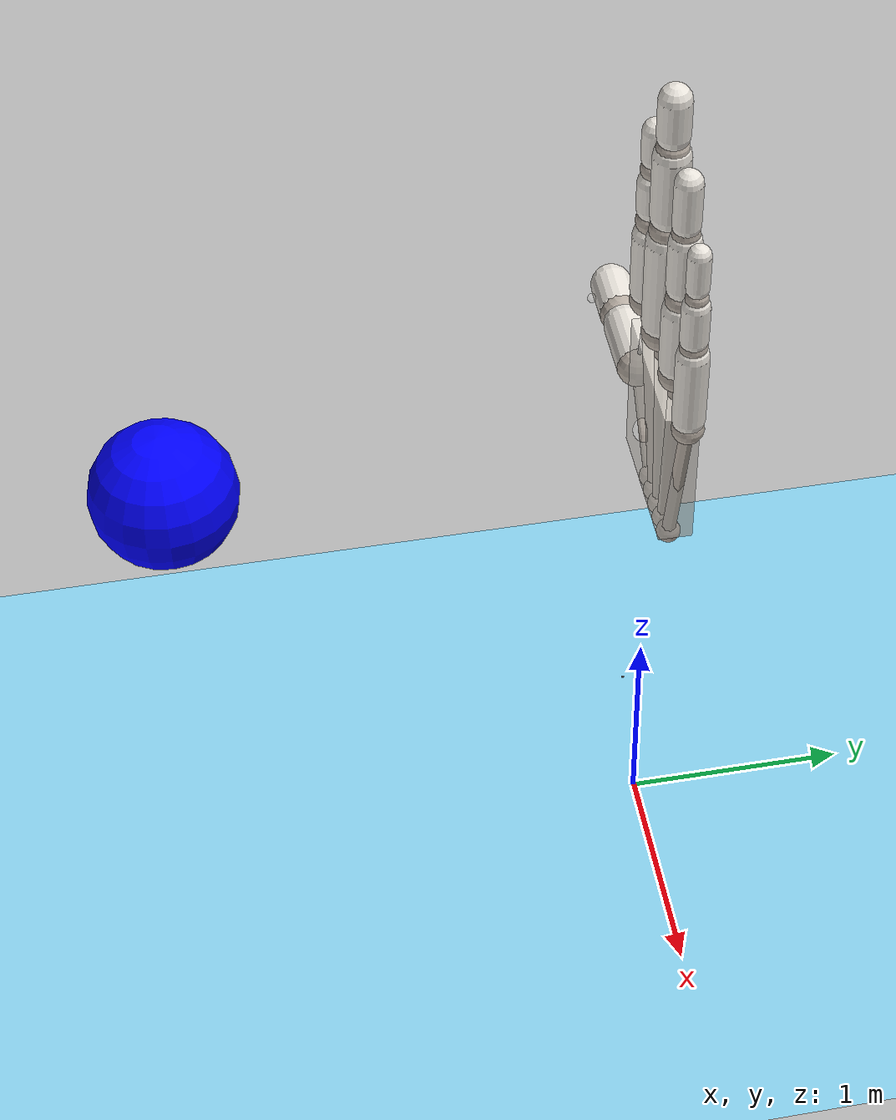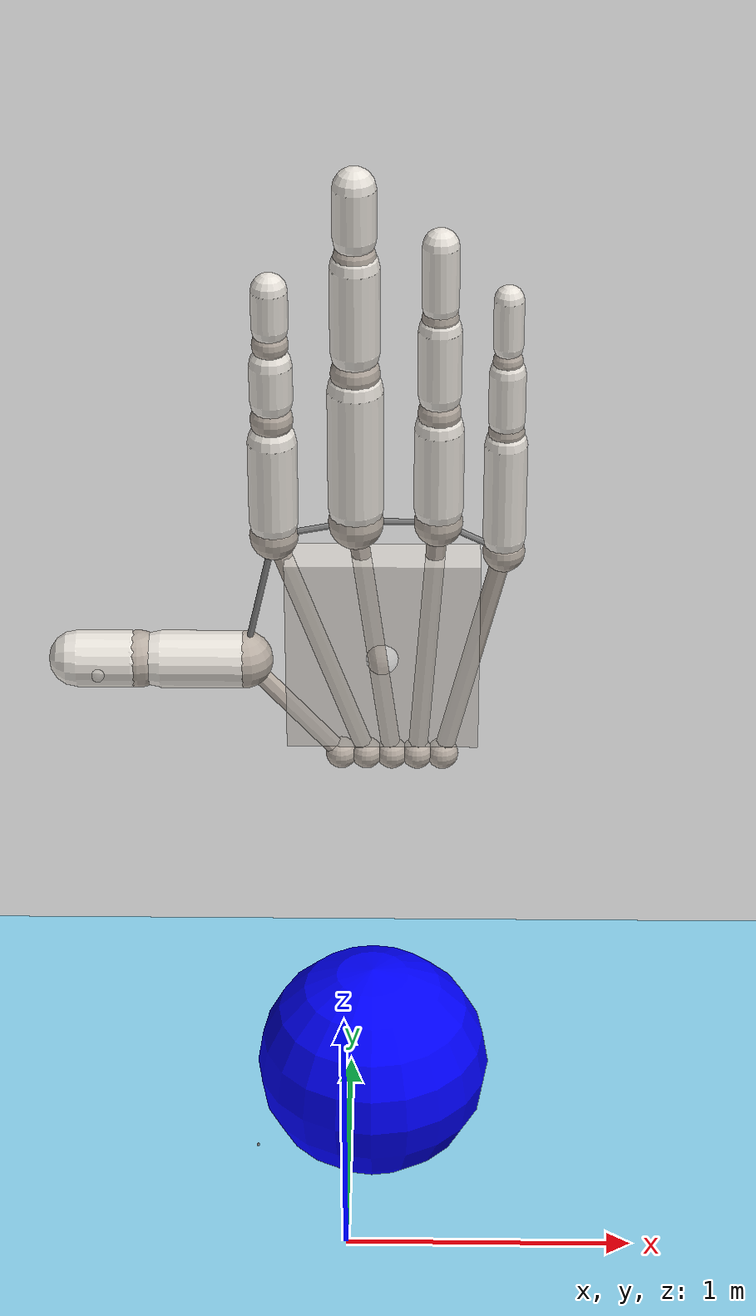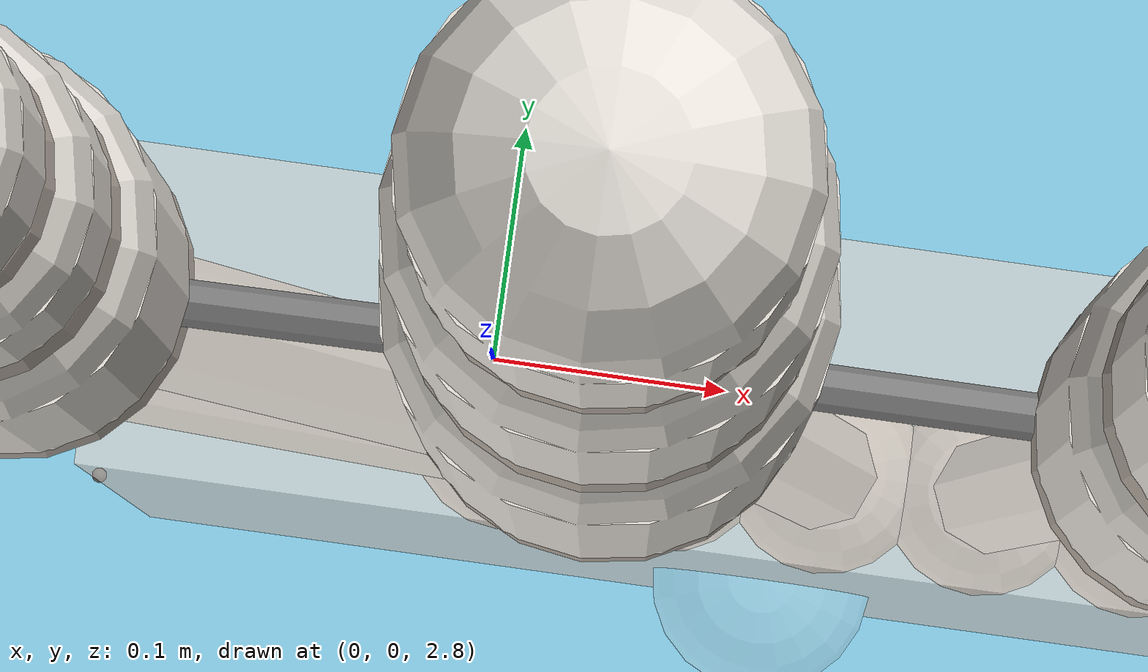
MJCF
<mujoco>
  <compiler angle="degree"/>
  <option  gravity="0 0 0" timestep="0.001"/>

  <worldbody>
    <light pos="0 0 100"/>
    <geom type="plane" size="50 50 0.1" pos="0 0 0" rgba="0.53 0.81 0.92 1"/>

    <body name="base" pos="0 0 2">

      <site name="jointf01_site" pos="0 0 0.1"/>
      <site name="jointf02_site" pos="0.08 0 0.1"/>
      <site name="jointf03_site" pos="0.16 0 0.1"/>
      <site name="jointf04_site" pos="0.24 0 0.1"/>
      <site name="jointf05_site" pos="0.32 0 0.1"/>

      <geom name="jointf01" type="sphere" size="0.05" pos="0 0 0.1" rgba="0.72 0.68 0.64 1"/>
      <geom name="jointf02" type="sphere" size="0.05" pos="0.08 0 0.1" rgba="0.72 0.68 0.64 1"/>
      <geom name="jointf03" type="sphere" size="0.05" pos="0.16 0 0.1" rgba="0.72 0.68 0.64 1"/>
      <geom name="jointf04" type="sphere" size="0.05" pos="0.24 0 0.1" rgba="0.72 0.68 0.64 1"/>
      <geom name="jointf05" type="sphere" size="0.05" pos="0.32 0 0.1" rgba="0.72 0.68 0.64 1"/>

      <geom name="jointf07" type="box" size="0.3 0.07 0.33" pos="0.13 0 0.5" rgba="0.91 0.89 0.86 0.7" solref="0.02 2"/>
            <site name="hand_touch" size="0.05" rgba="0.91 0.89 0.86 0.2" pos=" 0.13 -0.07 0.5"/>

      <body name="finger1_part1">
        <joint name="jointf11" type="hinge" axis="1 0 0" pos="-0.2 0 0.9" range="0 90" damping="0.5"/>
        <site name="jointf11_site" pos="-0.2 0 0.9"/>
        <geom name="jointf11_type" type="sphere" size="0.075" pos="-0.2 0 0.9" rgba="0.72 0.68 0.64 1"/>
        <geom name="bonef11" type="capsule" size="0.075" fromto="-0.2 0 0.95 -0.2 0 1.225" rgba="0.91 0.89 0.86 1"/>

        <body name="finger1_part2">
          <joint name="jointf12" type="hinge" axis="1 0 0" pos="-0.2 0 1.3" range="0 90" damping="0.3"/>
          <site name="jointf12_site" pos="-0.2 0 1.3"/>
          <geom name="jointf12_type" type="sphere" size="0.065" pos="-0.2 0 1.3" rgba="0.72 0.68 0.64 1"/>
          <geom name="bonef12" type="capsule" size="0.065" fromto="-0.2 0 1.365 -0.2 0 1.4825" rgba="0.91 0.89 0.86 1"/>

          <body name="finger1_part3">
            <joint name="jointf13" type="hinge" axis="1 0 0" pos="-0.2 0 1.55" range="0 90" damping="0.2"/>
            <site name="jointf13_site" pos="-0.2 0 1.55"/>
            <geom name="jointf13_type" type="sphere" size="0.055" pos="-0.2 0 1.55" rgba="0.72 0.68 0.64 1"/>
            <geom name="bonef13" type="capsule" size="0.055" fromto="-0.2 0 1.605 -0.2 0 1.725" rgba="0.91 0.89 0.86 1"/>
          </body>
        </body>
      </body>

      <body name="finger2_part1">
        <joint name="jointf21" type="hinge" axis="1 0 0" pos="0.05 0 0.95" range="0 90"/>
        <site name="jointf21_site" pos="0.05 0 0.95"/>
        <geom name="jointf21_type" type="sphere" size="0.085" pos="0.05 0 0.95" rgba="0.72 0.68 0.64 1"/>
        <geom name="bonef21" type="capsule" size="0.085" fromto="0.05 0.0 1 0.05 0.0 1.4" rgba="0.91 0.89 0.86 1"/>

        <body name="finger2_part2">
          <joint name="jointf22" type="hinge" axis="1 0 0" pos="0.05 0.0 1.4549999999999998" range="0 90" />
          <site name="jointf22_site" pos="0.05 0.0 1.4549999999999998"/>
          <geom name="jointf22_type" type="sphere" size="0.075" pos="0.05 0.0 1.454999999999999" rgba="0.72 0.68 0.64 1"/>
          <geom name="bonef22" type="capsule" size="0.075" fromto="0.05 0.0 1.5299999999999998 0.05 0.0 1.8" rgba="0.91 0.89 0.86 1"/>

          <body name="finger2_part3">
            <joint name="jointf23" type="hinge" axis="1 0 0" pos="0.05 0.0 1.8299999999999998" range="0 90" />
            <site name="jointf23_site" pos="0.05 0.0 1.8299999999999998"/>
            <geom name="jointf23_type" type="sphere" size="0.065" pos="0.05 0.0 1.8299999999999998" rgba="0.72 0.68 0.64 1"/>
            <geom name="bonef23" type="capsule" size="0.065" fromto="0.05 0.0 1.8949999999999998 0.05 0.0 2.05" rgba="0.91 0.89 0.86 1"/>
          </body>
        </body>
      </body>

      <body name="finger3_part1">
        <joint name="jointf31" type="hinge" axis="1 0 0" pos="0.3 0 0.95" range="0 90"/>
        <site name="jointf31_site" pos="0.3 0 0.95"/>
        <geom name="jointf31_type" type="sphere" size="0.075" pos="0.3 0 0.95" rgba="0.72 0.68 0.64 1"/>
        <geom name="bonef31" type="capsule" size="0.075" fromto="0.3 0.0 1 0.3 0.0 1.27" rgba="0.91 0.89 0.86 1"/>

        <body name="finger3_part2">
          <joint name="jointf32" type="hinge" axis="1 0 0" pos="0.3 0.0 1.325" range="0 90" />
          <site name="jointf32_site" pos="0.3 0.0 1.325"/>
          <geom name="jointf32_type" type="sphere" size="0.065" pos="0.3 0.0 1.325" rgba="0.72 0.68 0.64 1"/>
          <geom name="bonef32" type="capsule" size="0.065" fromto="0.3 0.0 1.39 0.3 0.0 1.6" rgba="0.91 0.89 0.86 1"/>

          <body name="finger3_part3">
            <joint name="jointf33" type="hinge" axis="1 0 0" pos="0.3 0.0 1.64" range="0 90" />
            <site name="jointf33_site" pos="0.3 0.0 1.64"/>
            <geom name="jointf33_type" type="sphere" size="0.055" pos="0.3 0.0 1.64" rgba="0.72 0.68 0.64 1"/>
            <geom name="bonef33" type="capsule" size="0.055" fromto="0.3 0.0 1.68 0.3 0.0 1.87" rgba="0.91 0.89 0.86 1"/>
          </body>
        </body>
      </body>

      <body name="finger4_part1">
        <joint name="jointf41" type="hinge" axis="1 0 0" pos="0.5 0 0.85" range="0 90"/>
        <site name="jointf41_site" pos="0.5 0 0.85"/>
        <geom name="jointf41_type" type="sphere" size="0.065" pos="0.5 0 0.85" rgba="0.72 0.68 0.64 1"/>
        <geom name="bonef41" type="capsule" size="0.065" fromto="0.5 0.0 0.9 0.5 0.0 1.22" rgba="0.91 0.89 0.86 1"/>

        <body name="finger4_part2">
          <joint name="jointf42" type="hinge" axis="1 0 0" pos="0.5 0.0 1.265" range="0 90" />
          <site name="jointf42_site" pos="0.5 0.0 1.265"/>
          <geom name="jointf42_type" type="sphere" size="0.055" pos="0.5 0.0 1.265" rgba="0.72 0.68 0.64 1"/>
          <geom name="bonef42" type="capsule" size="0.055" fromto="0.5 0.0 1.3 0.5 0.0 1.46" rgba="0.91 0.89 0.86 1"/>

          <body name="finger4_part3">
            <joint name="jointf43" type="hinge" axis="1 0 0" pos="0.5 0.0 1.5199999999999998" range="0 90" />
            <site name="jointf43_site" pos="0.5 0.0 1.5199999999999998"/>
            <site name="jointf4_tip" pos="0.5 0.0 1.7" size="0.01" />
            <geom name="jointf43_type" type="sphere" size="0.045" pos="0.5 0.0 1.5" rgba="0.72 0.68 0.64 1"/>
            <geom name="bonef43" type="capsule" size="0.045" fromto="0.5 0.0 1.55 0.5 0.0 1.7" rgba="0.91 0.89 0.86 1"/>
          </body>
        </body>
      </body>

      <body name="finger5_part1">
        <joint name="jointf51" type="hinge" axis="0 0 1" pos="-0.3 0 0.45" range="0 90"/>
        <site name="jointf51_site" pos="-0.3 0 0.45"/>
        <geom name="jointf51_type" type="sphere" size="0.09" pos="-0.3 0 0.45" rgba="0.72 0.68 0.64 1"/>
        <geom name="bonef51" type="capsule" size="0.09" fromto="-0.305 0.0 0.45 -0.56 0.0 0.45" rgba="0.91 0.89 0.86 1"/>

        <body name="finger5_part2">
          <joint name="jointf52" type="hinge" axis="0 0 1" pos="-0.63 0 0.45" range="0 90"/>
          <site name="jointf52_site" pos="-0.63 0 0.45"/>
          <site name="f5_tip" size="0.02" pos="-0.75 -0.1 0.45" rgba="0.91 0.89 0.86 0.2"/>
          <geom name="jointf52_type" type="sphere" size="0.09" pos="-0.63 0 0.45" rgba="0.72 0.68 0.64 1"/>
          <geom name="bonef52" type="capsule" size="0.09" fromto="-0.65 0 0.45 -0.82 0.0 0.45" rgba="0.91 0.89 0.86 1"/>
        </body>
      </body>
    </body>
<body name="ball">
        <joint name="ball_joint" type="slide" axis="0 1 0" range="0 180"/>
        <site name="ball_site" pos="-0.3 0 0.45"/>
        <geom name="ball" type="sphere" size="0.3" pos="0.13 -2 2.5" rgba="0 0 1 1" solref="0.02 2"/>
</body>
  </worldbody>

  <tendon>
    <fixed name="tendon_flex">
      <joint joint="jointf11" coef="1"/>
      <joint joint="jointf12" coef="0.5"/>
      <joint joint="jointf13" coef="0.2"/>

      <joint joint="jointf21" coef="1"/>
      <joint joint="jointf22" coef="0.3"/>
      <joint joint="jointf23" coef="0.1"/>

      <joint joint="jointf31" coef="1"/>
      <joint joint="jointf32" coef="0.5"/>
      <joint joint="jointf33" coef="0.3"/>

      <joint joint="jointf41" coef="1"/>
      <joint joint="jointf42" coef="0.5"/>
      <joint joint="jointf43" coef="0.3"/>

      <joint joint="jointf51" coef="1"/>
      <joint joint="jointf52" coef="0.2"/>
    </fixed>

    <spatial name="bones" stiffness="0" width="0.01">
      <site site="jointf51_site"/>
      <site site="jointf11_site"/>
      <site site="jointf21_site"/>
      <site site="jointf31_site"/>
      <site site="jointf41_site"/>
    </spatial>

    <spatial name="bones_05" stiffness="0" width="0.03" rgba="0.72 0.68 0.64 1">
      <site site="jointf01_site"/>
      <site site="jointf51_site"/>
    </spatial>

    <spatial name="bones_01" stiffness="0" width="0.03" rgba="0.72 0.68 0.64 1">
      <site site="jointf02_site"/>
      <site site="jointf11_site"/>
    </spatial>

    <spatial name="bones_02" stiffness="0" width="0.03" rgba="0.72 0.68 0.64 1">
      <site site="jointf03_site"/>
      <site site="jointf21_site"/>
    </spatial>

    <spatial name="bones_03" stiffness="0" width="0.03" rgba="0.72 0.68 0.64 1">
      <site site="jointf04_site"/>
      <site site="jointf31_site"/>
    </spatial>

    <spatial name="bones_04" stiffness="0" width="0.03" rgba="0.72 0.68 0.64 1">
      <site site="jointf05_site"/>
      <site site="jointf41_site"/>
    </spatial>

  </tendon>

  <actuator>
        <motor name="finger11" joint="jointf11" gear="30"/>
        <motor name="finger21" joint="jointf21" gear="90"/>
        <motor name="finger31" joint="jointf31" gear="30"/>
        <motor name="finger41" joint="jointf41" gear="30"/>
        <motor name="finger51" joint="jointf51" gear="30"/>

        <motor name="finger12" joint="jointf12" gear="7"/>
        <motor name="finger22" joint="jointf22" gear="15"/>
        <motor name="finger32" joint="jointf32" gear="7"/>
        <motor name="finger42" joint="jointf42" gear="7"/>
        <motor name="finger52" joint="jointf52" gear="5"/>

        <motor name="finger13" joint="jointf13" gear="2"/>
        <motor name="finger23" joint="jointf23" gear="5"/>
        <motor name="finger33" joint="jointf33" gear="2"/>
        <motor name="finger43" joint="jointf43" gear="1"/>

        <motor name="ball_motor" joint="ball_joint" gear="100"/>
  </actuator>

  <sensor>
        <touch name="touch_hand" site="hand_touch"/>
        <touch name="finger1_t" site="jointf12_site"/>
        <touch name="finger2_t" site="jointf22_site"/>
        <touch name="finger3_t" site="jointf32_site"/>
        <touch name="tip_f5" site="f5_tip"/>
  </sensor>
</mujoco>
